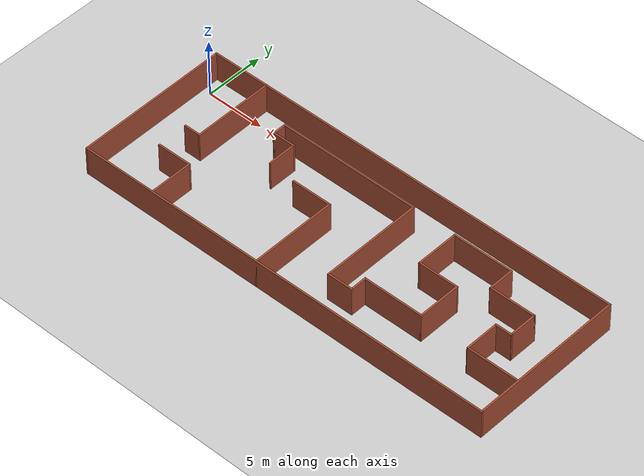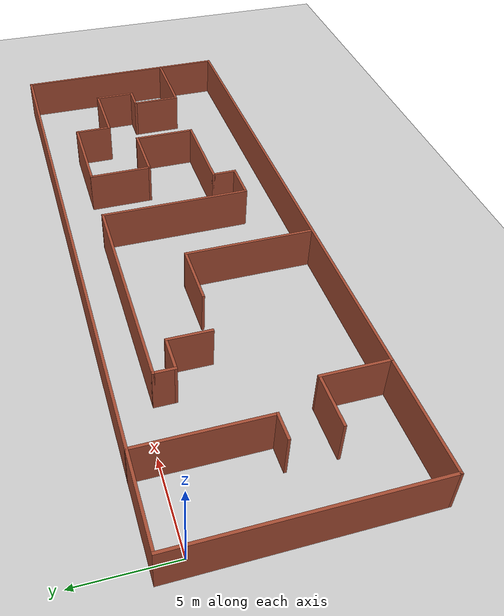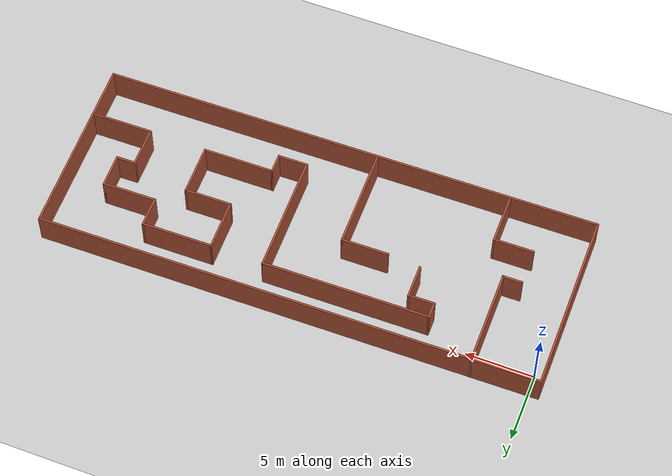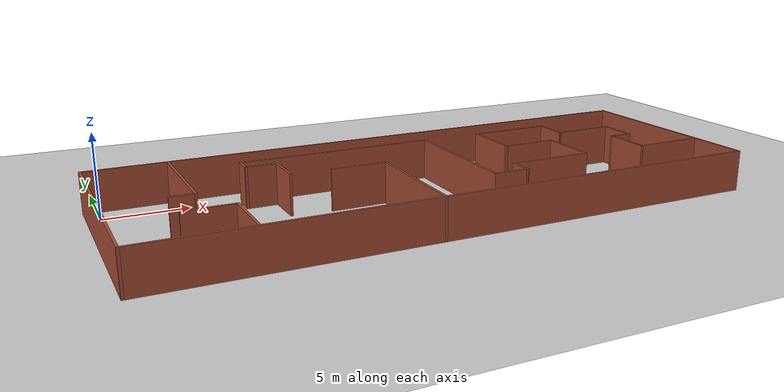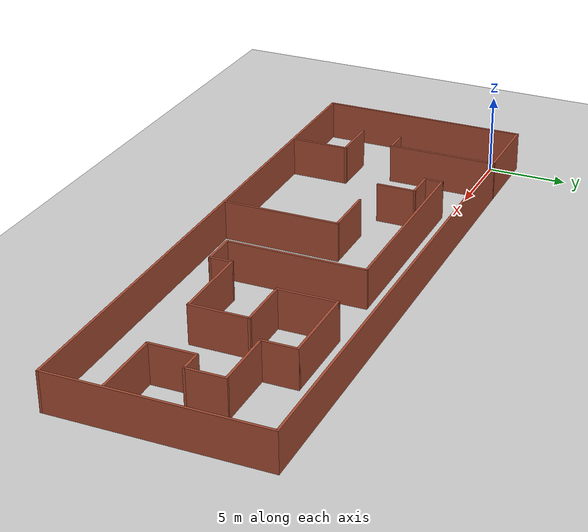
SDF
<sdf version="1.6">
 <world name="default">
  <light name="sun" type="directional">
   <pose>0 0 10 0 -0 0</pose>
   <diffuse>0.8 0.8 0.8 1</diffuse>
   <specular>0.2 0.2 0.2 1</specular>
   <attenuation>
    <range>1000</range>
    <constant>0.9</constant>
    <linear>0.01</linear>
    <quadratic>0.001</quadratic>
   </attenuation>
   <direction>-0.5 0.1 -0.9</direction>
  </light>
  <model name="ground_plane">
   <static>1</static>
   <link name="link">
    <collision name="collision">
     <geometry><plane><normal>0 0 1</normal><size>100 100</size></plane></geometry>
     <surface><friction><ode><mu>100</mu><mu2>50</mu2></ode></friction></surface>
    </collision>
    <visual name="visual">
     <cast_shadows>0</cast_shadows>
     <geometry><plane><normal>0 0 1</normal><size>100 100</size></plane></geometry>
     <material>
      <script><uri>file://media/materials/scripts/gazebo.material</uri><name>Gazebo/Grey</name></script>
     </material>
    </visual>
   </link>
  </model>
  <gravity>0 0 -9.8</gravity>
  <magnetic_field>6e-06 2.3e-05 -4.2e-05</magnetic_field>
  <atmosphere type="adiabatic"/>
  <physics name="default_physics" default="0" type="ode">
   <max_step_size>0.001</max_step_size>
   <real_time_factor>1</real_time_factor>
   <real_time_update_rate>1000</real_time_update_rate>
  </physics>
  <scene><ambient>0.4 0.4 0.4 1</ambient><background>0.7 0.7 0.7 1</background><shadows>1</shadows></scene>
  <spherical_coordinates>
   <surface_model>EARTH_WGS84</surface_model>
   <latitude_deg>0</latitude_deg>
   <longitude_deg>0</longitude_deg>
   <elevation>0</elevation>
   <heading_deg>0</heading_deg>
  </spherical_coordinates>
  <model name="s_test1">
   <pose>17.6399 -4.90818 0 0 0 -3.13174</pose>
   <link name="Wall_35">
    <collision name="Wall_35_Collision">
     <geometry><box><size>13.25 0.15 2.5</size></box></geometry>
     <pose>0 0 1.25 0 -0 0</pose>
    </collision>
    <visual name="Wall_35_Visual">
     <pose>0 0 1.25 0 -0 0</pose>
     <geometry><box><size>13.25 0.15 2.5</size></box></geometry>
     <material>
      <script><uri>file://media/materials/scripts/gazebo.material</uri><name>Gazebo/Bricks</name></script>
      <ambient>1 1 1 1</ambient>
     </material>
     <meta><layer>0</layer></meta>
    </visual>
    <pose>-18.3 0.003803 0 0 0 -1.5708</pose>
   </link>
   <link name="Wall_36">
    <collision name="Wall_36_Collision">
     <geometry><box><size>36.75 0.15 2.5</size></box></geometry>
     <pose>0 0 1.25 0 -0 0</pose>
    </collision>
    <visual name="Wall_36_Visual">
     <pose>0 0 1.25 0 -0 0</pose>
     <geometry><box><size>36.75 0.15 2.5</size></box></geometry>
     <material>
      <script><uri>file://media/materials/scripts/gazebo.material</uri><name>Gazebo/Bricks</name></script>
      <ambient>1 1 1 1</ambient>
     </material>
     <meta><layer>0</layer></meta>
    </visual>
    <pose>0 -6.5462 0 0 -0 0</pose>
   </link>
   <link name="Wall_37">
    <collision name="Wall_37_Collision">
     <geometry><box><size>13.25 0.15 2.5</size></box></geometry>
     <pose>0 0 1.25 0 -0 0</pose>
    </collision>
    <visual name="Wall_37_Visual">
     <pose>0 0 1.25 0 -0 0</pose>
     <geometry><box><size>13.25 0.15 2.5</size></box></geometry>
     <material>
      <script><uri>file://media/materials/scripts/gazebo.material</uri><name>Gazebo/Bricks</name></script>
      <ambient>1 1 1 1</ambient>
     </material>
     <meta><layer>0</layer></meta>
    </visual>
    <pose>18.3 0.003803 0 0 -0 1.5708</pose>
   </link>
   <link name="Wall_38">
    <collision name="Wall_38_Collision">
     <geometry><box><size>36.75 0.15 2.5</size></box></geometry>
     <pose>0 0 1.25 0 -0 0</pose>
    </collision>
    <visual name="Wall_38_Visual">
     <pose>0 0 1.25 0 -0 0</pose>
     <geometry><box><size>36.75 0.15 2.5</size></box></geometry>
     <material>
      <script><uri>file://media/materials/scripts/gazebo.material</uri><name>Gazebo/Bricks</name></script>
      <ambient>1 1 1 1</ambient>
     </material>
     <meta><layer>0</layer></meta>
    </visual>
    <pose>0 6.5538 0 0 -0 3.14159</pose>
   </link>
   <link name="Wall_40">
    <collision name="Wall_40_Collision">
     <geometry><box><size>4.5 0.15 2.5</size></box></geometry>
     <pose>0 0 1.25 0 -0 0</pose>
    </collision>
    <visual name="Wall_40_Visual">
     <pose>0 0 1.25 0 -0 0</pose>
     <geometry><box><size>4.5 0.15 2.5</size></box></geometry>
     <material>
      <script><uri>file://media/materials/scripts/gazebo.material</uri><name>Gazebo/Bricks</name></script>
      <ambient>1 1 1 1</ambient>
     </material>
     <meta><layer>0</layer></meta>
    </visual>
    <pose>-16.0441 2.87235 0 0 -0 0</pose>
   </link>
   <link name="Wall_41">
    <collision name="Wall_41_Collision">
     <geometry><box><size>3 0.15 2.5</size></box></geometry>
     <pose>0 0 1.25 0 -0 0</pose>
    </collision>
    <visual name="Wall_41_Visual">
     <pose>0 0 1.25 0 -0 0</pose>
     <geometry><box><size>3 0.15 2.5</size></box></geometry>
     <material>
      <script><uri>file://media/materials/scripts/gazebo.material</uri><name>Gazebo/Bricks</name></script>
      <ambient>1 1 1 1</ambient>
     </material>
     <meta><layer>0</layer></meta>
    </visual>
    <pose>-13.8691 1.44735 0 0 0 -1.5708</pose>
   </link>
   <link name="Wall_42">
    <collision name="Wall_42_Collision">
     <geometry><box><size>1.5 0.15 2.5</size></box></geometry>
     <pose>0 0 1.25 0 -0 0</pose>
    </collision>
    <visual name="Wall_42_Visual">
     <pose>0 0 1.25 0 -0 0</pose>
     <geometry><box><size>1.5 0.15 2.5</size></box></geometry>
     <material>
      <script><uri>file://media/materials/scripts/gazebo.material</uri><name>Gazebo/Bricks</name></script>
      <ambient>1 1 1 1</ambient>
     </material>
     <meta><layer>0</layer></meta>
    </visual>
    <pose>-14.5441 0.022346 0 0 -0 3.14159</pose>
   </link>
   <link name="Wall_43">
    <collision name="Wall_43_Collision">
     <geometry><box><size>2.5 0.15 2.5</size></box></geometry>
     <pose>0 0 1.25 0 -0 0</pose>
    </collision>
    <visual name="Wall_43_Visual">
     <pose>0 0 1.25 0 -0 0</pose>
     <geometry><box><size>2.5 0.15 2.5</size></box></geometry>
     <material>
      <script><uri>file://media/materials/scripts/gazebo.material</uri><name>Gazebo/Bricks</name></script>
      <ambient>1 1 1 1</ambient>
     </material>
     <meta><layer>0</layer></meta>
    </visual>
    <pose>-15.2191 -1.15265 0 0 0 -1.5708</pose>
   </link>
   <link name="Wall_44">
    <collision name="Wall_44_Collision">
     <geometry><box><size>4 0.15 2.5</size></box></geometry>
     <pose>0 0 1.25 0 -0 0</pose>
    </collision>
    <visual name="Wall_44_Visual">
     <pose>0 0 1.25 0 -0 0</pose>
     <geometry><box><size>4 0.15 2.5</size></box></geometry>
     <material>
      <script><uri>file://media/materials/scripts/gazebo.material</uri><name>Gazebo/Bricks</name></script>
      <ambient>1 1 1 1</ambient>
     </material>
     <meta><layer>0</layer></meta>
    </visual>
    <pose>-13.2941 -2.32765 0 0 -0 0</pose>
   </link>
   <link name="Wall_45">
    <collision name="Wall_45_Collision">
     <geometry><box><size>2.25 0.15 2.5</size></box></geometry>
     <pose>0 0 1.25 0 -0 0</pose>
    </collision>
    <visual name="Wall_45_Visual">
     <pose>0 0 1.25 0 -0 0</pose>
     <geometry><box><size>2.25 0.15 2.5</size></box></geometry>
     <material>
      <script><uri>file://media/materials/scripts/gazebo.material</uri><name>Gazebo/Bricks</name></script>
      <ambient>1 1 1 1</ambient>
     </material>
     <meta><layer>0</layer></meta>
    </visual>
    <pose>-11.3691 -3.37765 0 0 0 -1.5708</pose>
   </link>
   <link name="Wall_46">
    <collision name="Wall_46_Collision">
     <geometry><box><size>5.25 0.15 2.5</size></box></geometry>
     <pose>0 0 1.25 0 -0 0</pose>
    </collision>
    <visual name="Wall_46_Visual">
     <pose>0 0 1.25 0 -0 0</pose>
     <geometry><box><size>5.25 0.15 2.5</size></box></geometry>
     <material>
      <script><uri>file://media/materials/scripts/gazebo.material</uri><name>Gazebo/Bricks</name></script>
      <ambient>1 1 1 1</ambient>
     </material>
     <meta><layer>0</layer></meta>
    </visual>
    <pose>-8.81909 -4.42765 0 0 -0 0</pose>
   </link>
   <link name="Wall_47">
    <collision name="Wall_47_Collision">
     <geometry><box><size>3.75 0.15 2.5</size></box></geometry>
     <pose>0 0 1.25 0 -0 0</pose>
    </collision>
    <visual name="Wall_47_Visual">
     <pose>0 0 1.25 0 -0 0</pose>
     <geometry><box><size>3.75 0.15 2.5</size></box></geometry>
     <material>
      <script><uri>file://media/materials/scripts/gazebo.material</uri><name>Gazebo/Bricks</name></script>
      <ambient>1 1 1 1</ambient>
     </material>
     <meta><layer>0</layer></meta>
    </visual>
    <pose>-6.26909 -2.62765 0 0 -0 1.5708</pose>
   </link>
   <link name="Wall_48">
    <collision name="Wall_48_Collision">
     <geometry><box><size>3.5 0.15 2.5</size></box></geometry>
     <pose>0 0 1.25 0 -0 0</pose>
    </collision>
    <visual name="Wall_48_Visual">
     <pose>0 0 1.25 0 -0 0</pose>
     <geometry><box><size>3.5 0.15 2.5</size></box></geometry>
     <material>
      <script><uri>file://media/materials/scripts/gazebo.material</uri><name>Gazebo/Bricks</name></script>
      <ambient>1 1 1 1</ambient>
     </material>
     <meta><layer>0</layer></meta>
    </visual>
    <pose>-7.94409 -0.827654 0 0 -0 3.14159</pose>
   </link>
   <link name="Wall_49">
    <collision name="Wall_49_Collision">
     <geometry><box><size>3.75 0.15 2.5</size></box></geometry>
     <pose>0 0 1.25 0 -0 0</pose>
    </collision>
    <visual name="Wall_49_Visual">
     <pose>0 0 1.25 0 -0 0</pose>
     <geometry><box><size>3.75 0.15 2.5</size></box></geometry>
     <material>
      <script><uri>file://media/materials/scripts/gazebo.material</uri><name>Gazebo/Bricks</name></script>
      <ambient>1 1 1 1</ambient>
     </material>
     <meta><layer>0</layer></meta>
    </visual>
    <pose>-9.61909 0.972346 0 0 -0 1.5708</pose>
   </link>
   <link name="Wall_50">
    <collision name="Wall_50_Collision">
     <geometry><box><size>5.25 0.15 2.5</size></box></geometry>
     <pose>0 0 1.25 0 -0 0</pose>
    </collision>
    <visual name="Wall_50_Visual">
     <pose>0 0 1.25 0 -0 0</pose>
     <geometry><box><size>5.25 0.15 2.5</size></box></geometry>
     <material>
      <script><uri>file://media/materials/scripts/gazebo.material</uri><name>Gazebo/Bricks</name></script>
      <ambient>1 1 1 1</ambient>
     </material>
     <meta><layer>0</layer></meta>
    </visual>
    <pose>-7.06909 2.77235 0 0 -0 0</pose>
   </link>
   <link name="Wall_51">
    <collision name="Wall_51_Collision">
     <geometry><box><size>1.5 0.15 2.5</size></box></geometry>
     <pose>0 0 1.25 0 -0 0</pose>
    </collision>
    <visual name="Wall_51_Visual">
     <pose>0 0 1.25 0 -0 0</pose>
     <geometry><box><size>1.5 0.15 2.5</size></box></geometry>
     <material>
      <script><uri>file://media/materials/scripts/gazebo.material</uri><name>Gazebo/Bricks</name></script>
      <ambient>1 1 1 1</ambient>
     </material>
     <meta><layer>0</layer></meta>
    </visual>
    <pose>-4.51909 3.44735 0 0 -0 1.5708</pose>
   </link>
   <link name="Wall_52">
    <collision name="Wall_52_Collision">
     <geometry><box><size>2.25 0.15 2.5</size></box></geometry>
     <pose>0 0 1.25 0 -0 0</pose>
    </collision>
    <visual name="Wall_52_Visual">
     <pose>0 0 1.25 0 -0 0</pose>
     <geometry><box><size>2.25 0.15 2.5</size></box></geometry>
     <material>
      <script><uri>file://media/materials/scripts/gazebo.material</uri><name>Gazebo/Bricks</name></script>
      <ambient>1 1 1 1</ambient>
     </material>
     <meta><layer>0</layer></meta>
    </visual>
    <pose>-3.46909 4.12235 0 0 -0 0</pose>
   </link>
   <link name="Wall_53">
    <collision name="Wall_53_Collision">
     <geometry><box><size>8.75 0.15 2.5</size></box></geometry>
     <pose>0 0 1.25 0 -0 0</pose>
    </collision>
    <visual name="Wall_53_Visual">
     <pose>0 0 1.25 0 -0 0</pose>
     <geometry><box><size>8.75 0.15 2.5</size></box></geometry>
     <material>
      <script><uri>file://media/materials/scripts/gazebo.material</uri><name>Gazebo/Bricks</name></script>
      <ambient>1 1 1 1</ambient>
     </material>
     <meta><layer>0</layer></meta>
    </visual>
    <pose>-2.41909 -0.177654 0 0 0 -1.5708</pose>
   </link>
   <link name="Wall_54">
    <collision name="Wall_54_Collision">
     <geometry><box><size>12.25 0.15 2.5</size></box></geometry>
     <pose>0 0 1.25 0 -0 0</pose>
    </collision>
    <visual name="Wall_54_Visual">
     <pose>0 0 1.25 0 -0 0</pose>
     <geometry><box><size>12.25 0.15 2.5</size></box></geometry>
     <material>
      <script><uri>file://media/materials/scripts/gazebo.material</uri><name>Gazebo/Bricks</name></script>
      <ambient>1 1 1 1</ambient>
     </material>
     <meta><layer>0</layer></meta>
    </visual>
    <pose>3.63091 -4.47765 0 0 -0 0</pose>
   </link>
   <link name="Wall_55">
    <collision name="Wall_55_Collision">
     <geometry><box><size>1.25 0.15 2.5</size></box></geometry>
     <pose>0 0 1.25 0 -0 0</pose>
    </collision>
    <visual name="Wall_55_Visual">
     <pose>0 0 1.25 0 -0 0</pose>
     <geometry><box><size>1.25 0.15 2.5</size></box></geometry>
     <material>
      <script><uri>file://media/materials/scripts/gazebo.material</uri><name>Gazebo/Bricks</name></script>
      <ambient>1 1 1 1</ambient>
     </material>
     <meta><layer>0</layer></meta>
    </visual>
    <pose>9.68091 -3.92765 0 0 -0 1.5708</pose>
   </link>
   <link name="Wall_56">
    <collision name="Wall_56_Collision">
     <geometry><box><size>2 0.15 2.5</size></box></geometry>
     <pose>0 0 1.25 0 -0 0</pose>
    </collision>
    <visual name="Wall_56_Visual">
     <pose>0 0 1.25 0 -0 0</pose>
     <geometry><box><size>2 0.15 2.5</size></box></geometry>
     <material>
      <script><uri>file://media/materials/scripts/gazebo.material</uri><name>Gazebo/Bricks</name></script>
      <ambient>1 1 1 1</ambient>
     </material>
     <meta><layer>0</layer></meta>
    </visual>
    <pose>8.75591 -3.37765 0 0 -0 3.14159</pose>
   </link>
   <link name="Wall_57">
    <collision name="Wall_57_Collision">
     <geometry><box><size>2.5 0.15 2.5</size></box></geometry>
     <pose>0 0 1.25 0 -0 0</pose>
    </collision>
    <visual name="Wall_57_Visual">
     <pose>0 0 1.25 0 -0 0</pose>
     <geometry><box><size>2.5 0.15 2.5</size></box></geometry>
     <material>
      <script><uri>file://media/materials/scripts/gazebo.material</uri><name>Gazebo/Bricks</name></script>
      <ambient>1 1 1 1</ambient>
     </material>
     <meta><layer>0</layer></meta>
    </visual>
    <pose>7.83091 -2.20265 0 0 -0 1.5708</pose>
   </link>
   <link name="Wall_59">
    <collision name="Wall_59_Collision">
     <geometry><box><size>7 0.15 2.5</size></box></geometry>
     <pose>0 0 1.25 0 -0 0</pose>
    </collision>
    <visual name="Wall_59_Visual">
     <pose>0 0 1.25 0 -0 0</pose>
     <geometry><box><size>7 0.15 2.5</size></box></geometry>
     <material>
      <script><uri>file://media/materials/scripts/gazebo.material</uri><name>Gazebo/Bricks</name></script>
      <ambient>1 1 1 1</ambient>
     </material>
     <meta><layer>0</layer></meta>
    </visual>
    <pose>13.4172 -3.1288 0 0 -0 1.5708</pose>
   </link>
   <link name="Wall_60">
    <collision name="Wall_60_Collision">
     <geometry><box><size>1.5 0.15 2.5</size></box></geometry>
     <pose>0 0 1.25 0 -0 0</pose>
    </collision>
    <visual name="Wall_60_Visual">
     <pose>0 0 1.25 0 -0 0</pose>
     <geometry><box><size>1.5 0.15 2.5</size></box></geometry>
     <material>
      <script><uri>file://media/materials/scripts/gazebo.material</uri><name>Gazebo/Bricks</name></script>
      <ambient>1 1 1 1</ambient>
     </material>
     <meta><layer>0</layer></meta>
    </visual>
    <pose>14.0922 0.296196 0 0 -0 0</pose>
   </link>
   <link name="Wall_62">
    <collision name="Wall_62_Collision">
     <geometry><box><size>3 0.15 2.5</size></box></geometry>
     <pose>0 0 1.25 0 -0 0</pose>
    </collision>
    <visual name="Wall_62_Visual">
     <pose>0 0 1.25 0 -0 0</pose>
     <geometry><box><size>3 0.15 2.5</size></box></geometry>
     <material>
      <script><uri>file://media/materials/scripts/gazebo.material</uri><name>Gazebo/Bricks</name></script>
      <ambient>1 1 1 1</ambient>
     </material>
     <meta><layer>0</layer></meta>
    </visual>
    <pose>13.3422 2.8962 0 0 -0 3.14159</pose>
   </link>
   <link name="Wall_63">
    <collision name="Wall_63_Collision">
     <geometry><box><size>3.75 0.15 2.5</size></box></geometry>
     <pose>0 0 1.25 0 -0 0</pose>
    </collision>
    <visual name="Wall_63_Visual">
     <pose>0 0 1.25 0 -0 0</pose>
     <geometry><box><size>3.75 0.15 2.5</size></box></geometry>
     <material>
      <script><uri>file://media/materials/scripts/gazebo.material</uri><name>Gazebo/Bricks</name></script>
      <ambient>1 1 1 1</ambient>
     </material>
     <meta><layer>0</layer></meta>
    </visual>
    <pose>11.9172 4.6962 0 0 -0 1.5708</pose>
   </link>
   <link name="Wall_65">
    <collision name="Wall_65_Collision">
     <geometry><box><size>7.5 0.15 2.5</size></box></geometry>
     <pose>0 0 1.25 0 -0 0</pose>
    </collision>
    <visual name="Wall_65_Visual">
     <pose>0 0 1.25 0 -0 0</pose>
     <geometry><box><size>7.5 0.15 2.5</size></box></geometry>
     <material>
      <script><uri>file://media/materials/scripts/gazebo.material</uri><name>Gazebo/Bricks</name></script>
      <ambient>1 1 1 1</ambient>
     </material>
     <meta><layer>0</layer></meta>
    </visual>
    <pose>2.04915 2.8788 0 0 0 -1.5708</pose>
   </link>
   <link name="Wall_66">
    <collision name="Wall_66_Collision">
     <geometry><box><size>3.5 0.15 2.5</size></box></geometry>
     <pose>0 0 1.25 0 -0 0</pose>
    </collision>
    <visual name="Wall_66_Visual">
     <pose>0 0 1.25 0 -0 0</pose>
     <geometry><box><size>3.5 0.15 2.5</size></box></geometry>
     <material>
      <script><uri>file://media/materials/scripts/gazebo.material</uri><name>Gazebo/Bricks</name></script>
      <ambient>1 1 1 1</ambient>
     </material>
     <meta><layer>0</layer></meta>
    </visual>
    <pose>3.72416 -0.796197 0 0 -0 0</pose>
   </link>
   <static>1</static>
  </model>
  <plugin name="gazebo_connection_plugin" filename="libgazebo_connection_plugin.so"/>
 </world>
</sdf>
